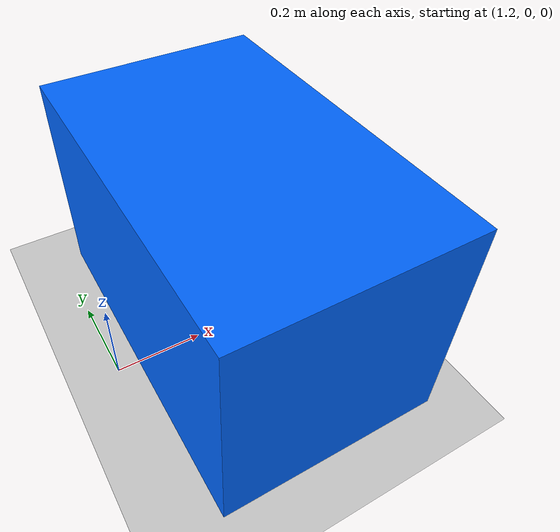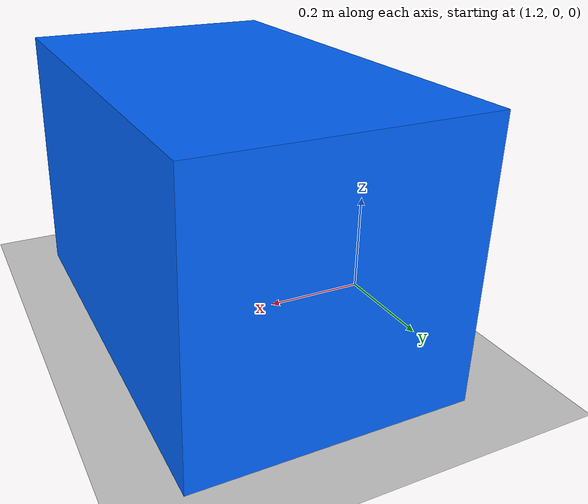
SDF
<?xml version="1.0" ?>
<sdf version="1.6">
  <world name="empty">
    <physics name="1ms" type="ignored">
      <max_step_size>0.001</max_step_size>
      <real_time_factor>1.0</real_time_factor>
    </physics>
    <plugin
      filename="gz-sim-physics-system"
      name="gz::sim::systems::Physics">
    </plugin>
    <plugin
      filename="gz-sim-user-commands-system"
      name="gz::sim::systems::UserCommands">
    </plugin>
    <plugin
      filename="gz-sim-scene-broadcaster-system"
      name="gz::sim::systems::SceneBroadcaster">
    </plugin>
    <plugin
      filename="gz-sim-contact-system"
      name="gz::sim::systems::Contact">
    </plugin>
    <!-- Camera sensor system -->
    <plugin
      filename="gz-sim-sensors-system"
      name="gz::sim::systems::Sensors">
    </plugin>

    <light type="directional" name="sun">
      <cast_shadows>true</cast_shadows>
      <pose>0 0 10 0 0 0</pose>
      <diffuse>0.8 0.8 0.8 1</diffuse>
      <specular>0.2 0.2 0.2 1</specular>
      <attenuation>
        <range>1000</range>
        <constant>0.9</constant>
        <linear>0.01</linear>
        <quadratic>0.001</quadratic>
      </attenuation>
      <direction>-0.5 0.1 -0.9</direction>
    </light>

    <model name="ground_plane">
      <static>true</static>
      <link name="link">
        <collision name="collision">
          <geometry>
            <plane>
              <normal>0 0 1</normal>
              <size>100 100</size>
            </plane>
          </geometry>
        </collision>
        <visual name="visual">
          <geometry>
            <plane>
              <normal>0 0 1</normal>
              <size>100 100</size>
            </plane>
          </geometry>
          <material>
            <ambient>0.8 0.8 0.8 1</ambient>
            <diffuse>0.8 0.8 0.8 1</diffuse>
            <specular>0.8 0.8 0.8 1</specular>
          </material>
        </visual>
      </link>
    </model>

    <plugin filename="gz-sim-imu-system"
            name="gz::sim::systems::Imu"/>

    <!-- CONTACT SENSOR TEST OBSTACLE -->
    <model name="contact_test_box">

        <static>true</static>

        <pose>1.5 0 0.25 0 0 0</pose>

        <link name="box_link">

            <collision name="box_collision">
                <geometry>
                    <box>
                        <size>0.5 0.8 0.5</size>
                    </box>
                </geometry>
            </collision>

            <visual name="box_visual">
                <geometry>
                    <box>
                        <size>0.5 0.8 0.5</size>
                    </box>
                </geometry>

                <material>
                    <ambient>0 0.4 1 1</ambient>
                    <diffuse>0 0.4 1 1</diffuse>
                </material>
            </visual>

        </link>

    </model>
  </world>
</sdf>
